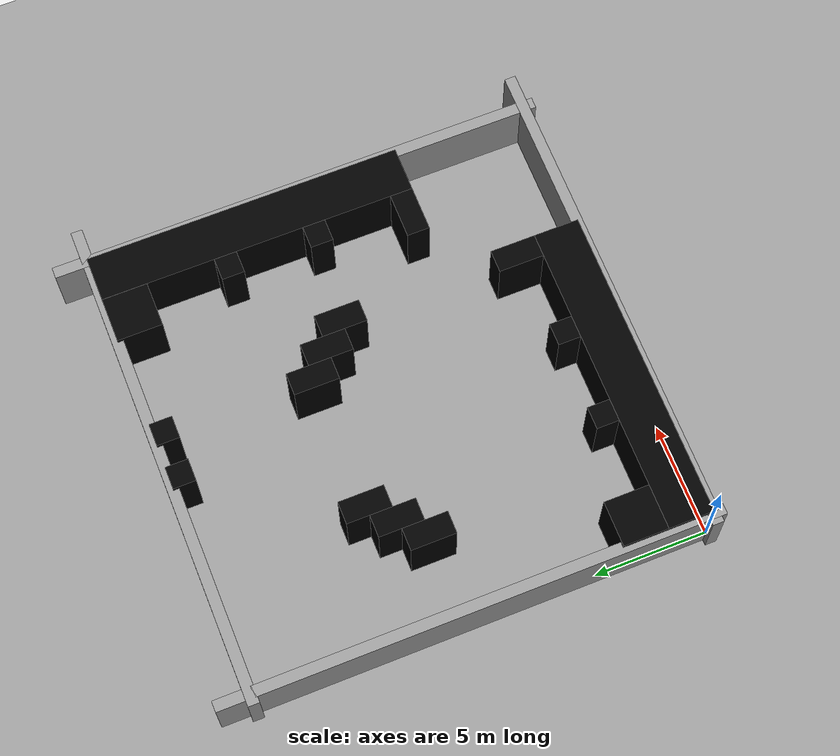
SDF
<sdf version="1.7">
 <world name="default">
  <plugin name="ros_interface_plugin" filename="librotors_gazebo_ros_interface_plugin.so"/>
  <light name="sun" type="directional">
   <pose>0 0 10 0 -0 0</pose>
   <diffuse>0.8 0.8 0.8 1</diffuse>
   <specular>0.2 0.2 0.2 1</specular>
   <attenuation>
    <range>1000</range>
    <constant>0.9</constant>
    <linear>0.01</linear>
    <quadratic>0.001</quadratic>
   </attenuation>
   <direction>-0.5 0.1 -0.9</direction>
   <spot><inner_angle>0</inner_angle><outer_angle>0</outer_angle><falloff>0</falloff></spot>
  </light>
  <model name="ground_plane">
   <static>1</static>
   <link name="link">
    <collision name="collision">
     <geometry><plane><normal>0 0 1</normal><size>100 100</size></plane></geometry>
     <surface><friction><ode><mu>100</mu><mu2>50</mu2></ode></friction></surface>
    </collision>
    <visual name="visual">
     <cast_shadows>0</cast_shadows>
     <geometry><plane><normal>0 0 1</normal><size>100 100</size></plane></geometry>
     <material>
      <script><uri>file://media/materials/scripts/gazebo.material</uri><name>Gazebo/Grey</name></script>
     </material>
    </visual>
   </link>
  </model>
  <gravity>0 0 -9.8</gravity>
  <magnetic_field>6e-06 2.3e-05 -4.2e-05</magnetic_field>
  <atmosphere type="adiabatic"/>
  <physics name="default_physics" default="0" type="ode">
   <max_step_size>0.01</max_step_size>
   <real_time_factor>1</real_time_factor>
   <real_time_update_rate>100</real_time_update_rate>
  </physics>
  <scene><ambient>0.4 0.4 0.4 1</ambient><background>0.7 0.7 0.7 1</background><shadows>1</shadows></scene>
  <audio><device>default</device></audio>
  <spherical_coordinates>
   <surface_model>EARTH_WGS84</surface_model>
   <latitude_deg>0</latitude_deg>
   <longitude_deg>0</longitude_deg>
   <elevation>0</elevation>
   <heading_deg>0</heading_deg>
  </spherical_coordinates>
  <model name="wood_cube_2_5cm">
   <link name="link">
    <pose>0 0 0.0125 0 -0 0</pose>
    <inertial>
     <mass>0.0073</mass>
     <inertia>
      <ixx>7.60417e-07</ixx>
      <ixy>0</ixy>
      <ixz>0</ixz>
      <iyy>7.60417e-07</iyy>
      <iyz>0</iyz>
      <izz>7.60417e-07</izz>
     </inertia>
    </inertial>
    <collision name="collision">
     <geometry><box><size>0.025 0.025 0.025</size></box></geometry>
     <surface>
      <contact>
       <poissons_ratio>0.347</poissons_ratio>
       <elastic_modulus>8.8e+09</elastic_modulus>
       <ode><kp>100000</kp><kd>100</kd><max_vel>100</max_vel><min_depth>0.001</min_depth></ode>
      </contact>
      <friction>
       <torsional>
        <coefficient>1</coefficient>
        <use_patch_radius>0</use_patch_radius>
        <surface_radius>0.01</surface_radius>
       </torsional>
      </friction>
     </surface>
    </collision>
    <visual name="visual">
     <geometry><box><size>0.025 0.025 0.025</size></box></geometry>
     <material>
      <script><uri>file://media/materials/scripts/gazebo.material</uri><name>Gazebo/Wood</name></script>
     </material>
    </visual>
   </link>
   <pose>9.08295 -8.46454 -0.000471 1e-06 0.032616 0</pose>
  </model>
  <model name="ground_plane_0">
   <static>1</static>
   <link name="link">
    <collision name="collision">
     <geometry><plane><normal>0 0 1</normal><size>100 100</size></plane></geometry>
     <surface>
      <contact><collide_bitmask>65535</collide_bitmask></contact>
      <friction><ode><mu>100</mu><mu2>50</mu2></ode></friction>
     </surface>
    </collision>
    <visual name="visual">
     <cast_shadows>0</cast_shadows>
     <geometry><plane><normal>0 0 1</normal><size>100 100</size></plane></geometry>
     <material>
      <script><uri>file://media/materials/scripts/gazebo.material</uri><name>Gazebo/Grey</name></script>
     </material>
    </visual>
   </link>
   <pose>5.30691 -0.598783 0 0 -0 0</pose>
  </model>
  <model name="brick_black_2x2_9">
   <link name="chassis">
    <pose>0 0 1.5 0 -0 0</pose>
    <inertial>
     <mass>1</mass>
     <inertia><ixx>1</ixx><ixy>0</ixy><ixz>0</ixz><iyy>1</iyy><iyz>0</iyz><izz>1</izz></inertia>
    </inertial>
    <visual name="visual">
     <geometry><mesh><uri>model://brick_box_3x1x3/meshes/simple_box.dae</uri><scale>2 2 3</scale></mesh></geometry>
     <material>
      <script>
       <uri>model://brick_box_3x1x3/materials/scripts</uri>
       <uri>model://brick_box_3x1x3/materials/textures</uri>
       <name>BrickBox/Diffuse</name>
      </script>
      <shader type="vertex"><normal_map>__default__</normal_map></shader>
      <ambient>0 0 0 1</ambient>
      <diffuse>0 0 0 1</diffuse>
      <specular>0 0 0 1</specular>
      <emissive>0 0 0 1</emissive>
      <lighting>1</lighting>
     </material>
    </visual>
    <collision name="collision">
     <geometry><box><size>2 2 3</size></box></geometry>
     <surface>
      <friction>
       <ode><mu>1</mu><mu2>1</mu2><fdir1>0 0 0</fdir1><slip1>0</slip1><slip2>0</slip2></ode>
       <torsional>
        <coefficient>1</coefficient>
        <patch_radius>0</patch_radius>
        <surface_radius>0</surface_radius>
        <use_patch_radius>1</use_patch_radius>
        <ode><slip>0</slip></ode>
       </torsional>
      </friction>
      <bounce><restitution_coefficient>0</restitution_coefficient><threshold>1e+06</threshold></bounce>
      <contact>
       <collide_without_contact>0</collide_without_contact>
       <collide_without_contact_bitmask>1</collide_without_contact_bitmask>
       <collide_bitmask>1</collide_bitmask>
       <ode>
        <soft_cfm>0</soft_cfm>
        <soft_erp>0.2</soft_erp>
        <kp>1e+13</kp>
        <kd>1</kd>
        <max_vel>0.01</max_vel>
        <min_depth>0</min_depth>
       </ode>
       <bullet>
        <split_impulse>1</split_impulse>
        <split_impulse_penetration_threshold>-0.01</split_impulse_penetration_threshold>
        <soft_cfm>0</soft_cfm>
        <soft_erp>0.2</soft_erp>
        <kp>1e+13</kp>
        <kd>1</kd>
       </bullet>
      </contact>
     </surface>
    </collision>
   </link>
   <static>1</static>
   <pose>1 3 0 0 -0 0</pose>
  </model>
  <model name="brick_black_2x2_11">
   <link name="chassis">
    <pose>0 0 1.5 0 -0 0</pose>
    <inertial>
     <mass>1</mass>
     <inertia><ixx>1</ixx><ixy>0</ixy><ixz>0</ixz><iyy>1</iyy><iyz>0</iyz><izz>1</izz></inertia>
    </inertial>
    <visual name="visual">
     <geometry><mesh><uri>model://brick_box_3x1x3/meshes/simple_box.dae</uri><scale>2 2 3</scale></mesh></geometry>
     <material>
      <script>
       <uri>model://brick_box_3x1x3/materials/scripts</uri>
       <uri>model://brick_box_3x1x3/materials/textures</uri>
       <name>BrickBox/Diffuse</name>
      </script>
      <shader type="vertex"><normal_map>__default__</normal_map></shader>
      <ambient>0 0 0 1</ambient>
      <diffuse>0 0 0 1</diffuse>
      <specular>0 0 0 1</specular>
      <emissive>0 0 0 1</emissive>
      <lighting>1</lighting>
     </material>
    </visual>
    <collision name="collision">
     <geometry><box><size>2 2 3</size></box></geometry>
     <surface>
      <friction>
       <ode><mu>1</mu><mu2>1</mu2><fdir1>0 0 0</fdir1><slip1>0</slip1><slip2>0</slip2></ode>
       <torsional>
        <coefficient>1</coefficient>
        <patch_radius>0</patch_radius>
        <surface_radius>0</surface_radius>
        <use_patch_radius>1</use_patch_radius>
        <ode><slip>0</slip></ode>
       </torsional>
      </friction>
      <bounce><restitution_coefficient>0</restitution_coefficient><threshold>1e+06</threshold></bounce>
      <contact>
       <collide_without_contact>0</collide_without_contact>
       <collide_without_contact_bitmask>1</collide_without_contact_bitmask>
       <collide_bitmask>1</collide_bitmask>
       <ode>
        <soft_cfm>0</soft_cfm>
        <soft_erp>0.2</soft_erp>
        <kp>1e+13</kp>
        <kd>1</kd>
        <max_vel>0.01</max_vel>
        <min_depth>0</min_depth>
       </ode>
       <bullet>
        <split_impulse>1</split_impulse>
        <split_impulse_penetration_threshold>-0.01</split_impulse_penetration_threshold>
        <soft_cfm>0</soft_cfm>
        <soft_erp>0.2</soft_erp>
        <kp>1e+13</kp>
        <kd>1</kd>
       </bullet>
      </contact>
     </surface>
    </collision>
   </link>
   <static>1</static>
   <pose>17 19 0 0 -0 0</pose>
  </model>
  <model name="brick_black_14x2">
   <link name="chassis">
    <pose>0 0 1.5 0 -0 0</pose>
    <inertial>
     <mass>1</mass>
     <inertia><ixx>1</ixx><ixy>0</ixy><ixz>0</ixz><iyy>1</iyy><iyz>0</iyz><izz>1</izz></inertia>
    </inertial>
    <visual name="visual">
     <geometry>
      <mesh><uri>model://brick_box_3x1x3/meshes/simple_box.dae</uri><scale>14 2 3</scale></mesh>
     </geometry>
     <material>
      <script>
       <uri>model://brick_box_3x1x3/materials/scripts</uri>
       <uri>model://brick_box_3x1x3/materials/textures</uri>
       <name>BrickBox/Diffuse</name>
      </script>
      <shader type="vertex"><normal_map>__default__</normal_map></shader>
      <ambient>0 0 0 1</ambient>
      <diffuse>0 0 0 1</diffuse>
      <specular>0 0 0 1</specular>
      <emissive>0 0 0 1</emissive>
      <lighting>1</lighting>
     </material>
    </visual>
    <collision name="collision">
     <geometry><box><size>28 4 3</size></box></geometry>
     <surface>
      <friction>
       <ode><mu>1</mu><mu2>1</mu2><fdir1>0 0 0</fdir1><slip1>0</slip1><slip2>0</slip2></ode>
       <torsional>
        <coefficient>1</coefficient>
        <patch_radius>0</patch_radius>
        <surface_radius>0</surface_radius>
        <use_patch_radius>1</use_patch_radius>
        <ode><slip>0</slip></ode>
       </torsional>
      </friction>
      <bounce><restitution_coefficient>0</restitution_coefficient><threshold>1e+06</threshold></bounce>
      <contact>
       <collide_without_contact>0</collide_without_contact>
       <collide_without_contact_bitmask>1</collide_without_contact_bitmask>
       <collide_bitmask>1</collide_bitmask>
       <ode>
        <soft_cfm>0</soft_cfm>
        <soft_erp>0.2</soft_erp>
        <kp>1e+13</kp>
        <kd>1</kd>
        <max_vel>0.01</max_vel>
        <min_depth>0</min_depth>
       </ode>
       <bullet>
        <split_impulse>1</split_impulse>
        <split_impulse_penetration_threshold>-0.01</split_impulse_penetration_threshold>
        <soft_cfm>0</soft_cfm>
        <soft_erp>0.2</soft_erp>
        <kp>1e+13</kp>
        <kd>1</kd>
       </bullet>
      </contact>
     </surface>
    </collision>
   </link>
   <static>1</static>
   <pose>7 1 0 0 -0 0</pose>
  </model>
  <model name="brick_black_1x2">
   <link name="chassis">
    <pose>0 0 1.5 0 -0 0</pose>
    <inertial>
     <mass>1</mass>
     <inertia><ixx>1</ixx><ixy>0</ixy><ixz>0</ixz><iyy>1</iyy><iyz>0</iyz><izz>1</izz></inertia>
    </inertial>
    <visual name="visual">
     <geometry><mesh><uri>model://brick_box_3x1x3/meshes/simple_box.dae</uri><scale>1 2 3</scale></mesh></geometry>
     <material>
      <script>
       <uri>model://brick_box_3x1x3/materials/scripts</uri>
       <uri>model://brick_box_3x1x3/materials/textures</uri>
       <name>BrickBox/Diffuse</name>
      </script>
      <shader type="vertex"><normal_map>__default__</normal_map></shader>
      <ambient>0 0 0 1</ambient>
      <diffuse>0 0 0 1</diffuse>
      <specular>0 0 0 1</specular>
      <emissive>0 0 0 1</emissive>
      <lighting>1</lighting>
     </material>
    </visual>
    <collision name="collision">
     <geometry><box><size>1 2 3</size></box></geometry>
     <surface>
      <friction>
       <ode><mu>1</mu><mu2>1</mu2><fdir1>0 0 0</fdir1><slip1>0</slip1><slip2>0</slip2></ode>
       <torsional>
        <coefficient>1</coefficient>
        <patch_radius>0</patch_radius>
        <surface_radius>0</surface_radius>
        <use_patch_radius>1</use_patch_radius>
        <ode><slip>0</slip></ode>
       </torsional>
      </friction>
      <bounce><restitution_coefficient>0</restitution_coefficient><threshold>1e+06</threshold></bounce>
      <contact>
       <collide_without_contact>0</collide_without_contact>
       <collide_without_contact_bitmask>1</collide_without_contact_bitmask>
       <collide_bitmask>1</collide_bitmask>
       <ode>
        <soft_cfm>0</soft_cfm>
        <soft_erp>0.2</soft_erp>
        <kp>1e+13</kp>
        <kd>1</kd>
        <max_vel>0.01</max_vel>
        <min_depth>0</min_depth>
       </ode>
       <bullet>
        <split_impulse>1</split_impulse>
        <split_impulse_penetration_threshold>-0.01</split_impulse_penetration_threshold>
        <soft_cfm>0</soft_cfm>
        <soft_erp>0.2</soft_erp>
        <kp>1e+13</kp>
        <kd>1</kd>
       </bullet>
      </contact>
     </surface>
    </collision>
   </link>
   <static>1</static>
   <pose>13.5 3 3.1e-05 0 -0 0</pose>
  </model>
  <model name="brick_black_1x1">
   <link name="chassis">
    <pose>0 0 1.5 0 -0 0</pose>
    <inertial>
     <mass>1</mass>
     <inertia><ixx>1</ixx><ixy>0</ixy><ixz>0</ixz><iyy>1</iyy><iyz>0</iyz><izz>1</izz></inertia>
    </inertial>
    <visual name="visual">
     <geometry><mesh><uri>model://brick_box_3x1x3/meshes/simple_box.dae</uri><scale>1 1 3</scale></mesh></geometry>
     <material>
      <script>
       <uri>model://brick_box_3x1x3/materials/scripts</uri>
       <uri>model://brick_box_3x1x3/materials/textures</uri>
       <name>BrickBox/Diffuse</name>
      </script>
      <shader type="vertex"><normal_map>__default__</normal_map></shader>
      <ambient>0 0 0 1</ambient>
      <diffuse>0 0 0 1</diffuse>
      <specular>0 0 0 1</specular>
      <emissive>0 0 0 1</emissive>
      <lighting>1</lighting>
     </material>
    </visual>
    <collision name="collision">
     <geometry><box><size>1 1 3</size></box></geometry>
     <surface>
      <friction>
       <ode><mu>1</mu><mu2>1</mu2><fdir1>0 0 0</fdir1><slip1>0</slip1><slip2>0</slip2></ode>
       <torsional>
        <coefficient>1</coefficient>
        <patch_radius>0</patch_radius>
        <surface_radius>0</surface_radius>
        <use_patch_radius>1</use_patch_radius>
        <ode><slip>0</slip></ode>
       </torsional>
      </friction>
      <bounce><restitution_coefficient>0</restitution_coefficient><threshold>1e+06</threshold></bounce>
      <contact>
       <collide_without_contact>0</collide_without_contact>
       <collide_without_contact_bitmask>1</collide_without_contact_bitmask>
       <collide_bitmask>1</collide_bitmask>
       <ode>
        <soft_cfm>0</soft_cfm>
        <soft_erp>0.2</soft_erp>
        <kp>1e+13</kp>
        <kd>1</kd>
        <max_vel>0.01</max_vel>
        <min_depth>0</min_depth>
       </ode>
       <bullet>
        <split_impulse>1</split_impulse>
        <split_impulse_penetration_threshold>-0.01</split_impulse_penetration_threshold>
        <soft_cfm>0</soft_cfm>
        <soft_erp>0.2</soft_erp>
        <kp>1e+13</kp>
        <kd>1</kd>
       </bullet>
      </contact>
     </surface>
    </collision>
   </link>
   <static>1</static>
   <pose>5.5 2.5 0 0 -0 0</pose>
  </model>
  <model name="brick_black_1x1_0">
   <link name="chassis">
    <pose>0 0 1.5 0 -0 0</pose>
    <inertial>
     <mass>1</mass>
     <inertia><ixx>1</ixx><ixy>0</ixy><ixz>0</ixz><iyy>1</iyy><iyz>0</iyz><izz>1</izz></inertia>
    </inertial>
    <visual name="visual">
     <geometry><mesh><uri>model://brick_box_3x1x3/meshes/simple_box.dae</uri><scale>1 1 3</scale></mesh></geometry>
     <material>
      <script>
       <uri>model://brick_box_3x1x3/materials/scripts</uri>
       <uri>model://brick_box_3x1x3/materials/textures</uri>
       <name>BrickBox/Diffuse</name>
      </script>
      <shader type="vertex"><normal_map>__default__</normal_map></shader>
      <ambient>0 0 0 1</ambient>
      <diffuse>0 0 0 1</diffuse>
      <specular>0 0 0 1</specular>
      <emissive>0 0 0 1</emissive>
      <lighting>1</lighting>
     </material>
    </visual>
    <collision name="collision">
     <geometry><box><size>1 1 3</size></box></geometry>
     <surface>
      <friction>
       <ode><mu>1</mu><mu2>1</mu2><fdir1>0 0 0</fdir1><slip1>0</slip1><slip2>0</slip2></ode>
       <torsional>
        <coefficient>1</coefficient>
        <patch_radius>0</patch_radius>
        <surface_radius>0</surface_radius>
        <use_patch_radius>1</use_patch_radius>
        <ode><slip>0</slip></ode>
       </torsional>
      </friction>
      <bounce><restitution_coefficient>0</restitution_coefficient><threshold>1e+06</threshold></bounce>
      <contact>
       <collide_without_contact>0</collide_without_contact>
       <collide_without_contact_bitmask>1</collide_without_contact_bitmask>
       <collide_bitmask>1</collide_bitmask>
       <ode>
        <soft_cfm>0</soft_cfm>
        <soft_erp>0.2</soft_erp>
        <kp>1e+13</kp>
        <kd>1</kd>
        <max_vel>0.01</max_vel>
        <min_depth>0</min_depth>
       </ode>
       <bullet>
        <split_impulse>1</split_impulse>
        <split_impulse_penetration_threshold>-0.01</split_impulse_penetration_threshold>
        <soft_cfm>0</soft_cfm>
        <soft_erp>0.2</soft_erp>
        <kp>1e+13</kp>
        <kd>1</kd>
       </bullet>
      </contact>
     </surface>
    </collision>
   </link>
   <static>1</static>
   <pose>9.5 2.5 0 0 -0 0</pose>
  </model>
  <model name="grey_wall_22">
   <link name="link">
    <pose>0 0 1.4 0 -0 0</pose>
    <inertial>
     <mass>1</mass>
     <inertia><ixx>1</ixx><ixy>0</ixy><ixz>0</ixz><iyy>1</iyy><iyz>0</iyz><izz>1</izz></inertia>
    </inertial>
    <visual name="visual">
     <cast_shadows>0</cast_shadows>
     <geometry><box><size>22 0.5 2.8</size></box></geometry>
     <material>
      <script>
       <uri>model://grey_wall/materials/scripts</uri>
       <uri>model://grey_wall/materials/textures</uri>
       <name>vrc/grey_wall</name>
      </script>
      <shader type="vertex"><normal_map>__default__</normal_map></shader>
      <ambient>1 1 1 1</ambient>
      <diffuse>1 1 1 1</diffuse>
      <specular>0 0 0 1</specular>
      <emissive>0 0 0 1</emissive>
     </material>
    </visual>
    <collision name="collision">
     <geometry><box><size>22 0.5 2.8</size></box></geometry>
     <surface>
      <friction>
       <ode><mu>1</mu><mu2>1</mu2><fdir1>0 0 0</fdir1><slip1>0</slip1><slip2>0</slip2></ode>
       <torsional>
        <coefficient>1</coefficient>
        <patch_radius>0</patch_radius>
        <surface_radius>0</surface_radius>
        <use_patch_radius>1</use_patch_radius>
        <ode><slip>0</slip></ode>
       </torsional>
      </friction>
      <bounce><restitution_coefficient>0</restitution_coefficient><threshold>1e+06</threshold></bounce>
      <contact>
       <collide_without_contact>0</collide_without_contact>
       <collide_without_contact_bitmask>1</collide_without_contact_bitmask>
       <collide_bitmask>1</collide_bitmask>
       <ode>
        <soft_cfm>0</soft_cfm>
        <soft_erp>0.2</soft_erp>
        <kp>1e+13</kp>
        <kd>1</kd>
        <max_vel>0.01</max_vel>
        <min_depth>0</min_depth>
       </ode>
       <bullet>
        <split_impulse>1</split_impulse>
        <split_impulse_penetration_threshold>-0.01</split_impulse_penetration_threshold>
        <soft_cfm>0</soft_cfm>
        <soft_erp>0.2</soft_erp>
        <kp>1e+13</kp>
        <kd>1</kd>
       </bullet>
      </contact>
     </surface>
    </collision>
   </link>
   <static>1</static>
   <pose>10.5 0 0 0 -0 0</pose>
  </model>
  <model name="grey_wall_22_0">
   <link name="link">
    <pose>0 0 1.4 0 -0 0</pose>
    <inertial>
     <mass>1</mass>
     <inertia><ixx>1</ixx><ixy>0</ixy><ixz>0</ixz><iyy>1</iyy><iyz>0</iyz><izz>1</izz></inertia>
    </inertial>
    <visual name="visual">
     <cast_shadows>0</cast_shadows>
     <geometry><box><size>22 0.5 2.8</size></box></geometry>
     <material>
      <script>
       <uri>model://grey_wall/materials/scripts</uri>
       <uri>model://grey_wall/materials/textures</uri>
       <name>vrc/grey_wall</name>
      </script>
      <shader type="vertex"><normal_map>__default__</normal_map></shader>
      <ambient>1 1 1 1</ambient>
      <diffuse>1 1 1 1</diffuse>
      <specular>0 0 0 1</specular>
      <emissive>0 0 0 1</emissive>
     </material>
    </visual>
    <collision name="collision">
     <geometry><box><size>22 0.5 2.8</size></box></geometry>
     <surface>
      <friction>
       <ode><mu>1</mu><mu2>1</mu2><fdir1>0 0 0</fdir1><slip1>0</slip1><slip2>0</slip2></ode>
       <torsional>
        <coefficient>1</coefficient>
        <patch_radius>0</patch_radius>
        <surface_radius>0</surface_radius>
        <use_patch_radius>1</use_patch_radius>
        <ode><slip>0</slip></ode>
       </torsional>
      </friction>
      <bounce><restitution_coefficient>0</restitution_coefficient><threshold>1e+06</threshold></bounce>
      <contact>
       <collide_without_contact>0</collide_without_contact>
       <collide_without_contact_bitmask>1</collide_without_contact_bitmask>
       <collide_bitmask>1</collide_bitmask>
       <ode>
        <soft_cfm>0</soft_cfm>
        <soft_erp>0.2</soft_erp>
        <kp>1e+13</kp>
        <kd>1</kd>
        <max_vel>0.01</max_vel>
        <min_depth>0</min_depth>
       </ode>
       <bullet>
        <split_impulse>1</split_impulse>
        <split_impulse_penetration_threshold>-0.01</split_impulse_penetration_threshold>
        <soft_cfm>0</soft_cfm>
        <soft_erp>0.2</soft_erp>
        <kp>1e+13</kp>
        <kd>1</kd>
       </bullet>
      </contact>
     </surface>
    </collision>
   </link>
   <static>1</static>
   <pose>10.5 20 0 0 -0 0</pose>
  </model>
  <model name="grey_wall_22_1">
   <link name="link">
    <pose>0 0 1.4 0 -0 0</pose>
    <inertial>
     <mass>1</mass>
     <inertia><ixx>1</ixx><ixy>0</ixy><ixz>0</ixz><iyy>1</iyy><iyz>0</iyz><izz>1</izz></inertia>
    </inertial>
    <visual name="visual">
     <cast_shadows>0</cast_shadows>
     <geometry><box><size>22 0.5 2.8</size></box></geometry>
     <material>
      <script>
       <uri>model://grey_wall/materials/scripts</uri>
       <uri>model://grey_wall/materials/textures</uri>
       <name>vrc/grey_wall</name>
      </script>
      <shader type="vertex"><normal_map>__default__</normal_map></shader>
      <ambient>1 1 1 1</ambient>
      <diffuse>1 1 1 1</diffuse>
      <specular>0 0 0 1</specular>
      <emissive>0 0 0 1</emissive>
     </material>
    </visual>
    <collision name="collision">
     <geometry><box><size>22 0.5 2.8</size></box></geometry>
     <surface>
      <friction>
       <ode><mu>1</mu><mu2>1</mu2><fdir1>0 0 0</fdir1><slip1>0</slip1><slip2>0</slip2></ode>
       <torsional>
        <coefficient>1</coefficient>
        <patch_radius>0</patch_radius>
        <surface_radius>0</surface_radius>
        <use_patch_radius>1</use_patch_radius>
        <ode><slip>0</slip></ode>
       </torsional>
      </friction>
      <bounce><restitution_coefficient>0</restitution_coefficient><threshold>1e+06</threshold></bounce>
      <contact>
       <collide_without_contact>0</collide_without_contact>
       <collide_without_contact_bitmask>1</collide_without_contact_bitmask>
       <collide_bitmask>1</collide_bitmask>
       <ode>
        <soft_cfm>0</soft_cfm>
        <soft_erp>0.2</soft_erp>
        <kp>1e+13</kp>
        <kd>1</kd>
        <max_vel>0.01</max_vel>
        <min_depth>0</min_depth>
       </ode>
       <bullet>
        <split_impulse>1</split_impulse>
        <split_impulse_penetration_threshold>-0.01</split_impulse_penetration_threshold>
        <soft_cfm>0</soft_cfm>
        <soft_erp>0.2</soft_erp>
        <kp>1e+13</kp>
        <kd>1</kd>
       </bullet>
      </contact>
     </surface>
    </collision>
   </link>
   <static>1</static>
   <pose>0 10.5 0 0 -0 1.57</pose>
  </model>
  <model name="grey_wall_22_2">
   <link name="link">
    <pose>0 0 1.4 0 -0 0</pose>
    <inertial>
     <mass>1</mass>
     <inertia><ixx>1</ixx><ixy>0</ixy><ixz>0</ixz><iyy>1</iyy><iyz>0</iyz><izz>1</izz></inertia>
    </inertial>
    <visual name="visual">
     <cast_shadows>0</cast_shadows>
     <geometry><box><size>22 0.5 2.8</size></box></geometry>
     <material>
      <script>
       <uri>model://grey_wall/materials/scripts</uri>
       <uri>model://grey_wall/materials/textures</uri>
       <name>vrc/grey_wall</name>
      </script>
      <shader type="vertex"><normal_map>__default__</normal_map></shader>
      <ambient>1 1 1 1</ambient>
      <diffuse>1 1 1 1</diffuse>
      <specular>0 0 0 1</specular>
      <emissive>0 0 0 1</emissive>
     </material>
    </visual>
    <collision name="collision">
     <geometry><box><size>22 0.5 2.8</size></box></geometry>
     <surface>
      <friction>
       <ode><mu>1</mu><mu2>1</mu2><fdir1>0 0 0</fdir1><slip1>0</slip1><slip2>0</slip2></ode>
       <torsional>
        <coefficient>1</coefficient>
        <patch_radius>0</patch_radius>
        <surface_radius>0</surface_radius>
        <use_patch_radius>1</use_patch_radius>
        <ode><slip>0</slip></ode>
       </torsional>
      </friction>
      <bounce><restitution_coefficient>0</restitution_coefficient><threshold>1e+06</threshold></bounce>
      <contact>
       <collide_without_contact>0</collide_without_contact>
       <collide_without_contact_bitmask>1</collide_without_contact_bitmask>
       <collide_bitmask>1</collide_bitmask>
       <ode>
        <soft_cfm>0</soft_cfm>
        <soft_erp>0.2</soft_erp>
        <kp>1e+13</kp>
        <kd>1</kd>
        <max_vel>0.01</max_vel>
        <min_depth>0</min_depth>
       </ode>
       <bullet>
        <split_impulse>1</split_impulse>
        <split_impulse_penetration_threshold>-0.01</split_impulse_penetration_threshold>
        <soft_cfm>0</soft_cfm>
        <soft_erp>0.2</soft_erp>
        <kp>1e+13</kp>
        <kd>1</kd>
       </bullet>
      </contact>
     </surface>
    </collision>
   </link>
   <static>1</static>
   <pose>20 10.5 0 0 -0 1.57</pose>
  </model>
  <model name="brick_black_14x2_0">
   <link name="chassis">
    <pose>0 0 1.5 0 -0 0</pose>
    <inertial>
     <mass>1</mass>
     <inertia><ixx>1</ixx><ixy>0</ixy><ixz>0</ixz><iyy>1</iyy><iyz>0</iyz><izz>1</izz></inertia>
    </inertial>
    <visual name="visual">
     <geometry>
      <mesh><uri>model://brick_box_3x1x3/meshes/simple_box.dae</uri><scale>14 2 3</scale></mesh>
     </geometry>
     <material>
      <script>
       <uri>model://brick_box_3x1x3/materials/scripts</uri>
       <uri>model://brick_box_3x1x3/materials/textures</uri>
       <name>BrickBox/Diffuse</name>
      </script>
      <shader type="vertex"><normal_map>__default__</normal_map></shader>
      <ambient>0 0 0 1</ambient>
      <diffuse>0 0 0 1</diffuse>
      <specular>0 0 0 1</specular>
      <emissive>0 0 0 1</emissive>
      <lighting>1</lighting>
     </material>
    </visual>
    <collision name="collision">
     <geometry><box><size>28 4 3</size></box></geometry>
     <surface>
      <friction>
       <ode><mu>1</mu><mu2>1</mu2><fdir1>0 0 0</fdir1><slip1>0</slip1><slip2>0</slip2></ode>
       <torsional>
        <coefficient>1</coefficient>
        <patch_radius>0</patch_radius>
        <surface_radius>0</surface_radius>
        <use_patch_radius>1</use_patch_radius>
        <ode><slip>0</slip></ode>
       </torsional>
      </friction>
      <bounce><restitution_coefficient>0</restitution_coefficient><threshold>1e+06</threshold></bounce>
      <contact>
       <collide_without_contact>0</collide_without_contact>
       <collide_without_contact_bitmask>1</collide_without_contact_bitmask>
       <collide_bitmask>1</collide_bitmask>
       <ode>
        <soft_cfm>0</soft_cfm>
        <soft_erp>0.2</soft_erp>
        <kp>1e+13</kp>
        <kd>1</kd>
        <max_vel>0.01</max_vel>
        <min_depth>0</min_depth>
       </ode>
       <bullet>
        <split_impulse>1</split_impulse>
        <split_impulse_penetration_threshold>-0.01</split_impulse_penetration_threshold>
        <soft_cfm>0</soft_cfm>
        <soft_erp>0.2</soft_erp>
        <kp>1e+13</kp>
        <kd>1</kd>
       </bullet>
      </contact>
     </surface>
    </collision>
   </link>
   <static>1</static>
   <pose>19 13 0 0 -0 1.57</pose>
  </model>
  <model name="brick_black_1x2_0">
   <link name="chassis">
    <pose>0 0 1.5 0 -0 0</pose>
    <inertial>
     <mass>1</mass>
     <inertia><ixx>1</ixx><ixy>0</ixy><ixz>0</ixz><iyy>1</iyy><iyz>0</iyz><izz>1</izz></inertia>
    </inertial>
    <visual name="visual">
     <geometry><mesh><uri>model://brick_box_3x1x3/meshes/simple_box.dae</uri><scale>1 2 3</scale></mesh></geometry>
     <material>
      <script>
       <uri>model://brick_box_3x1x3/materials/scripts</uri>
       <uri>model://brick_box_3x1x3/materials/textures</uri>
       <name>BrickBox/Diffuse</name>
      </script>
      <shader type="vertex"><normal_map>__default__</normal_map></shader>
      <ambient>0 0 0 1</ambient>
      <diffuse>0 0 0 1</diffuse>
      <specular>0 0 0 1</specular>
      <emissive>0 0 0 1</emissive>
      <lighting>1</lighting>
     </material>
    </visual>
    <collision name="collision">
     <geometry><box><size>1 2 3</size></box></geometry>
     <surface>
      <friction>
       <ode><mu>1</mu><mu2>1</mu2><fdir1>0 0 0</fdir1><slip1>0</slip1><slip2>0</slip2></ode>
       <torsional>
        <coefficient>1</coefficient>
        <patch_radius>0</patch_radius>
        <surface_radius>0</surface_radius>
        <use_patch_radius>1</use_patch_radius>
        <ode><slip>0</slip></ode>
       </torsional>
      </friction>
      <bounce><restitution_coefficient>0</restitution_coefficient><threshold>1e+06</threshold></bounce>
      <contact>
       <collide_without_contact>0</collide_without_contact>
       <collide_without_contact_bitmask>1</collide_without_contact_bitmask>
       <collide_bitmask>1</collide_bitmask>
       <ode>
        <soft_cfm>0</soft_cfm>
        <soft_erp>0.2</soft_erp>
        <kp>1e+13</kp>
        <kd>1</kd>
        <max_vel>0.01</max_vel>
        <min_depth>0</min_depth>
       </ode>
       <bullet>
        <split_impulse>1</split_impulse>
        <split_impulse_penetration_threshold>-0.01</split_impulse_penetration_threshold>
        <soft_cfm>0</soft_cfm>
        <soft_erp>0.2</soft_erp>
        <kp>1e+13</kp>
        <kd>1</kd>
       </bullet>
      </contact>
     </surface>
    </collision>
   </link>
   <static>1</static>
   <pose>17 6.5 0 0 -0 1.57</pose>
  </model>
  <model name="brick_black_1x1_1">
   <link name="chassis">
    <pose>0 0 1.5 0 -0 0</pose>
    <inertial>
     <mass>1</mass>
     <inertia><ixx>1</ixx><ixy>0</ixy><ixz>0</ixz><iyy>1</iyy><iyz>0</iyz><izz>1</izz></inertia>
    </inertial>
    <visual name="visual">
     <geometry><mesh><uri>model://brick_box_3x1x3/meshes/simple_box.dae</uri><scale>1 1 3</scale></mesh></geometry>
     <material>
      <script>
       <uri>model://brick_box_3x1x3/materials/scripts</uri>
       <uri>model://brick_box_3x1x3/materials/textures</uri>
       <name>BrickBox/Diffuse</name>
      </script>
      <shader type="vertex"><normal_map>__default__</normal_map></shader>
      <ambient>0 0 0 1</ambient>
      <diffuse>0 0 0 1</diffuse>
      <specular>0 0 0 1</specular>
      <emissive>0 0 0 1</emissive>
      <lighting>1</lighting>
     </material>
    </visual>
    <collision name="collision">
     <geometry><box><size>1 1 3</size></box></geometry>
     <surface>
      <friction>
       <ode><mu>1</mu><mu2>1</mu2><fdir1>0 0 0</fdir1><slip1>0</slip1><slip2>0</slip2></ode>
       <torsional>
        <coefficient>1</coefficient>
        <patch_radius>0</patch_radius>
        <surface_radius>0</surface_radius>
        <use_patch_radius>1</use_patch_radius>
        <ode><slip>0</slip></ode>
       </torsional>
      </friction>
      <bounce><restitution_coefficient>0</restitution_coefficient><threshold>1e+06</threshold></bounce>
      <contact>
       <collide_without_contact>0</collide_without_contact>
       <collide_without_contact_bitmask>1</collide_without_contact_bitmask>
       <collide_bitmask>1</collide_bitmask>
       <ode>
        <soft_cfm>0</soft_cfm>
        <soft_erp>0.2</soft_erp>
        <kp>1e+13</kp>
        <kd>1</kd>
        <max_vel>0.01</max_vel>
        <min_depth>0</min_depth>
       </ode>
       <bullet>
        <split_impulse>1</split_impulse>
        <split_impulse_penetration_threshold>-0.01</split_impulse_penetration_threshold>
        <soft_cfm>0</soft_cfm>
        <soft_erp>0.2</soft_erp>
        <kp>1e+13</kp>
        <kd>1</kd>
       </bullet>
      </contact>
     </surface>
    </collision>
   </link>
   <static>1</static>
   <pose>17.5 14.5 0 0 -0 0</pose>
  </model>
  <model name="brick_black_1x1_2">
   <link name="chassis">
    <pose>0 0 1.5 0 -0 0</pose>
    <inertial>
     <mass>1</mass>
     <inertia><ixx>1</ixx><ixy>0</ixy><ixz>0</ixz><iyy>1</iyy><iyz>0</iyz><izz>1</izz></inertia>
    </inertial>
    <visual name="visual">
     <geometry><mesh><uri>model://brick_box_3x1x3/meshes/simple_box.dae</uri><scale>1 1 3</scale></mesh></geometry>
     <material>
      <script>
       <uri>model://brick_box_3x1x3/materials/scripts</uri>
       <uri>model://brick_box_3x1x3/materials/textures</uri>
       <name>BrickBox/Diffuse</name>
      </script>
      <shader type="vertex"><normal_map>__default__</normal_map></shader>
      <ambient>0 0 0 1</ambient>
      <diffuse>0 0 0 1</diffuse>
      <specular>0 0 0 1</specular>
      <emissive>0 0 0 1</emissive>
      <lighting>1</lighting>
     </material>
    </visual>
    <collision name="collision">
     <geometry><box><size>1 1 3</size></box></geometry>
     <surface>
      <friction>
       <ode><mu>1</mu><mu2>1</mu2><fdir1>0 0 0</fdir1><slip1>0</slip1><slip2>0</slip2></ode>
       <torsional>
        <coefficient>1</coefficient>
        <patch_radius>0</patch_radius>
        <surface_radius>0</surface_radius>
        <use_patch_radius>1</use_patch_radius>
        <ode><slip>0</slip></ode>
       </torsional>
      </friction>
      <bounce><restitution_coefficient>0</restitution_coefficient><threshold>1e+06</threshold></bounce>
      <contact>
       <collide_without_contact>0</collide_without_contact>
       <collide_without_contact_bitmask>1</collide_without_contact_bitmask>
       <collide_bitmask>1</collide_bitmask>
       <ode>
        <soft_cfm>0</soft_cfm>
        <soft_erp>0.2</soft_erp>
        <kp>1e+13</kp>
        <kd>1</kd>
        <max_vel>0.01</max_vel>
        <min_depth>0</min_depth>
       </ode>
       <bullet>
        <split_impulse>1</split_impulse>
        <split_impulse_penetration_threshold>-0.01</split_impulse_penetration_threshold>
        <soft_cfm>0</soft_cfm>
        <soft_erp>0.2</soft_erp>
        <kp>1e+13</kp>
        <kd>1</kd>
       </bullet>
      </contact>
     </surface>
    </collision>
   </link>
   <static>1</static>
   <pose>17.5 10.5 0 0 -0 0</pose>
  </model>
  <model name="brick_black_1x2_1">
   <link name="chassis">
    <pose>0 0 1.5 0 -0 0</pose>
    <inertial>
     <mass>1</mass>
     <inertia><ixx>1</ixx><ixy>0</ixy><ixz>0</ixz><iyy>1</iyy><iyz>0</iyz><izz>1</izz></inertia>
    </inertial>
    <visual name="visual">
     <geometry><mesh><uri>model://brick_box_3x1x3/meshes/simple_box.dae</uri><scale>1 2 3</scale></mesh></geometry>
     <material>
      <script>
       <uri>model://brick_box_3x1x3/materials/scripts</uri>
       <uri>model://brick_box_3x1x3/materials/textures</uri>
       <name>BrickBox/Diffuse</name>
      </script>
      <shader type="vertex"><normal_map>__default__</normal_map></shader>
      <ambient>0 0 0 1</ambient>
      <diffuse>0 0 0 1</diffuse>
      <specular>0 0 0 1</specular>
      <emissive>0 0 0 1</emissive>
      <lighting>1</lighting>
     </material>
    </visual>
    <collision name="collision">
     <geometry><box><size>1 2 3</size></box></geometry>
     <surface>
      <friction>
       <ode><mu>1</mu><mu2>1</mu2><fdir1>0 0 0</fdir1><slip1>0</slip1><slip2>0</slip2></ode>
       <torsional>
        <coefficient>1</coefficient>
        <patch_radius>0</patch_radius>
        <surface_radius>0</surface_radius>
        <use_patch_radius>1</use_patch_radius>
        <ode><slip>0</slip></ode>
       </torsional>
      </friction>
      <bounce><restitution_coefficient>0</restitution_coefficient><threshold>1e+06</threshold></bounce>
      <contact>
       <collide_without_contact>0</collide_without_contact>
       <collide_without_contact_bitmask>1</collide_without_contact_bitmask>
       <collide_bitmask>1</collide_bitmask>
       <ode>
        <soft_cfm>0</soft_cfm>
        <soft_erp>0.2</soft_erp>
        <kp>1e+13</kp>
        <kd>1</kd>
        <max_vel>0.01</max_vel>
        <min_depth>0</min_depth>
       </ode>
       <bullet>
        <split_impulse>1</split_impulse>
        <split_impulse_penetration_threshold>-0.01</split_impulse_penetration_threshold>
        <soft_cfm>0</soft_cfm>
        <soft_erp>0.2</soft_erp>
        <kp>1e+13</kp>
        <kd>1</kd>
       </bullet>
      </contact>
     </surface>
    </collision>
   </link>
   <static>1</static>
   <pose>13.5 11 0 0 -0 0</pose>
  </model>
  <model name="brick_black_1x2_2">
   <link name="chassis">
    <pose>0 0 1.5 0 -0 0</pose>
    <inertial>
     <mass>1</mass>
     <inertia><ixx>1</ixx><ixy>0</ixy><ixz>0</ixz><iyy>1</iyy><iyz>0</iyz><izz>1</izz></inertia>
    </inertial>
    <visual name="visual">
     <geometry><mesh><uri>model://brick_box_3x1x3/meshes/simple_box.dae</uri><scale>1 2 3</scale></mesh></geometry>
     <material>
      <script>
       <uri>model://brick_box_3x1x3/materials/scripts</uri>
       <uri>model://brick_box_3x1x3/materials/textures</uri>
       <name>BrickBox/Diffuse</name>
      </script>
      <shader type="vertex"><normal_map>__default__</normal_map></shader>
      <ambient>0 0 0 1</ambient>
      <diffuse>0 0 0 1</diffuse>
      <specular>0 0 0 1</specular>
      <emissive>0 0 0 1</emissive>
      <lighting>1</lighting>
     </material>
    </visual>
    <collision name="collision">
     <geometry><box><size>1 2 3</size></box></geometry>
     <surface>
      <friction>
       <ode><mu>1</mu><mu2>1</mu2><fdir1>0 0 0</fdir1><slip1>0</slip1><slip2>0</slip2></ode>
       <torsional>
        <coefficient>1</coefficient>
        <patch_radius>0</patch_radius>
        <surface_radius>0</surface_radius>
        <use_patch_radius>1</use_patch_radius>
        <ode><slip>0</slip></ode>
       </torsional>
      </friction>
      <bounce><restitution_coefficient>0</restitution_coefficient><threshold>1e+06</threshold></bounce>
      <contact>
       <collide_without_contact>0</collide_without_contact>
       <collide_without_contact_bitmask>1</collide_without_contact_bitmask>
       <collide_bitmask>1</collide_bitmask>
       <ode>
        <soft_cfm>0</soft_cfm>
        <soft_erp>0.2</soft_erp>
        <kp>1e+13</kp>
        <kd>1</kd>
        <max_vel>0.01</max_vel>
        <min_depth>0</min_depth>
       </ode>
       <bullet>
        <split_impulse>1</split_impulse>
        <split_impulse_penetration_threshold>-0.01</split_impulse_penetration_threshold>
        <soft_cfm>0</soft_cfm>
        <soft_erp>0.2</soft_erp>
        <kp>1e+13</kp>
        <kd>1</kd>
       </bullet>
      </contact>
     </surface>
    </collision>
   </link>
   <static>1</static>
   <pose>12.5 12 0 0 -0 0</pose>
  </model>
  <model name="brick_black_1x2_3">
   <link name="chassis">
    <pose>0 0 1.5 0 -0 0</pose>
    <inertial>
     <mass>1</mass>
     <inertia><ixx>1</ixx><ixy>0</ixy><ixz>0</ixz><iyy>1</iyy><iyz>0</iyz><izz>1</izz></inertia>
    </inertial>
    <visual name="visual">
     <geometry><mesh><uri>model://brick_box_3x1x3/meshes/simple_box.dae</uri><scale>1 2 3</scale></mesh></geometry>
     <material>
      <script>
       <uri>model://brick_box_3x1x3/materials/scripts</uri>
       <uri>model://brick_box_3x1x3/materials/textures</uri>
       <name>BrickBox/Diffuse</name>
      </script>
      <shader type="vertex"><normal_map>__default__</normal_map></shader>
      <ambient>0 0 0 1</ambient>
      <diffuse>0 0 0 1</diffuse>
      <specular>0 0 0 1</specular>
      <emissive>0 0 0 1</emissive>
      <lighting>1</lighting>
     </material>
    </visual>
    <collision name="collision">
     <geometry><box><size>1 2 3</size></box></geometry>
     <surface>
      <friction>
       <ode><mu>1</mu><mu2>1</mu2><fdir1>0 0 0</fdir1><slip1>0</slip1><slip2>0</slip2></ode>
       <torsional>
        <coefficient>1</coefficient>
        <patch_radius>0</patch_radius>
        <surface_radius>0</surface_radius>
        <use_patch_radius>1</use_patch_radius>
        <ode><slip>0</slip></ode>
       </torsional>
      </friction>
      <bounce><restitution_coefficient>0</restitution_coefficient><threshold>1e+06</threshold></bounce>
      <contact>
       <collide_without_contact>0</collide_without_contact>
       <collide_without_contact_bitmask>1</collide_without_contact_bitmask>
       <collide_bitmask>1</collide_bitmask>
       <ode>
        <soft_cfm>0</soft_cfm>
        <soft_erp>0.2</soft_erp>
        <kp>1e+13</kp>
        <kd>1</kd>
        <max_vel>0.01</max_vel>
        <min_depth>0</min_depth>
       </ode>
       <bullet>
        <split_impulse>1</split_impulse>
        <split_impulse_penetration_threshold>-0.01</split_impulse_penetration_threshold>
        <soft_cfm>0</soft_cfm>
        <soft_erp>0.2</soft_erp>
        <kp>1e+13</kp>
        <kd>1</kd>
       </bullet>
      </contact>
     </surface>
    </collision>
   </link>
   <static>1</static>
   <pose>11.5 13 0 0 -0 0</pose>
  </model>
  <model name="brick_black_1x2_4">
   <link name="chassis">
    <pose>0 0 1.5 0 -0 0</pose>
    <inertial>
     <mass>1</mass>
     <inertia><ixx>1</ixx><ixy>0</ixy><ixz>0</ixz><iyy>1</iyy><iyz>0</iyz><izz>1</izz></inertia>
    </inertial>
    <visual name="visual">
     <geometry><mesh><uri>model://brick_box_3x1x3/meshes/simple_box.dae</uri><scale>1 2 3</scale></mesh></geometry>
     <material>
      <script>
       <uri>model://brick_box_3x1x3/materials/scripts</uri>
       <uri>model://brick_box_3x1x3/materials/textures</uri>
       <name>BrickBox/Diffuse</name>
      </script>
      <shader type="vertex"><normal_map>__default__</normal_map></shader>
      <ambient>0 0 0 1</ambient>
      <diffuse>0 0 0 1</diffuse>
      <specular>0 0 0 1</specular>
      <emissive>0 0 0 1</emissive>
      <lighting>1</lighting>
     </material>
    </visual>
    <collision name="collision">
     <geometry><box><size>1 2 3</size></box></geometry>
     <surface>
      <friction>
       <ode><mu>1</mu><mu2>1</mu2><fdir1>0 0 0</fdir1><slip1>0</slip1><slip2>0</slip2></ode>
       <torsional>
        <coefficient>1</coefficient>
        <patch_radius>0</patch_radius>
        <surface_radius>0</surface_radius>
        <use_patch_radius>1</use_patch_radius>
        <ode><slip>0</slip></ode>
       </torsional>
      </friction>
      <bounce><restitution_coefficient>0</restitution_coefficient><threshold>1e+06</threshold></bounce>
      <contact>
       <collide_without_contact>0</collide_without_contact>
       <collide_without_contact_bitmask>1</collide_without_contact_bitmask>
       <collide_bitmask>1</collide_bitmask>
       <ode>
        <soft_cfm>0</soft_cfm>
        <soft_erp>0.2</soft_erp>
        <kp>1e+13</kp>
        <kd>1</kd>
        <max_vel>0.01</max_vel>
        <min_depth>0</min_depth>
       </ode>
       <bullet>
        <split_impulse>1</split_impulse>
        <split_impulse_penetration_threshold>-0.01</split_impulse_penetration_threshold>
        <soft_cfm>0</soft_cfm>
        <soft_erp>0.2</soft_erp>
        <kp>1e+13</kp>
        <kd>1</kd>
       </bullet>
      </contact>
     </surface>
    </collision>
   </link>
   <static>1</static>
   <pose>5.5 13 0 0 -0 0</pose>
  </model>
  <model name="brick_black_1x2_5">
   <link name="chassis">
    <pose>0 0 1.5 0 -0 0</pose>
    <inertial>
     <mass>1</mass>
     <inertia><ixx>1</ixx><ixy>0</ixy><ixz>0</ixz><iyy>1</iyy><iyz>0</iyz><izz>1</izz></inertia>
    </inertial>
    <visual name="visual">
     <geometry><mesh><uri>model://brick_box_3x1x3/meshes/simple_box.dae</uri><scale>1 2 3</scale></mesh></geometry>
     <material>
      <script>
       <uri>model://brick_box_3x1x3/materials/scripts</uri>
       <uri>model://brick_box_3x1x3/materials/textures</uri>
       <name>BrickBox/Diffuse</name>
      </script>
      <shader type="vertex"><normal_map>__default__</normal_map></shader>
      <ambient>0 0 0 1</ambient>
      <diffuse>0 0 0 1</diffuse>
      <specular>0 0 0 1</specular>
      <emissive>0 0 0 1</emissive>
      <lighting>1</lighting>
     </material>
    </visual>
    <collision name="collision">
     <geometry><box><size>1 2 3</size></box></geometry>
     <surface>
      <friction>
       <ode><mu>1</mu><mu2>1</mu2><fdir1>0 0 0</fdir1><slip1>0</slip1><slip2>0</slip2></ode>
       <torsional>
        <coefficient>1</coefficient>
        <patch_radius>0</patch_radius>
        <surface_radius>0</surface_radius>
        <use_patch_radius>1</use_patch_radius>
        <ode><slip>0</slip></ode>
       </torsional>
      </friction>
      <bounce><restitution_coefficient>0</restitution_coefficient><threshold>1e+06</threshold></bounce>
      <contact>
       <collide_without_contact>0</collide_without_contact>
       <collide_without_contact_bitmask>1</collide_without_contact_bitmask>
       <collide_bitmask>1</collide_bitmask>
       <ode>
        <soft_cfm>0</soft_cfm>
        <soft_erp>0.2</soft_erp>
        <kp>1e+13</kp>
        <kd>1</kd>
        <max_vel>0.01</max_vel>
        <min_depth>0</min_depth>
       </ode>
       <bullet>
        <split_impulse>1</split_impulse>
        <split_impulse_penetration_threshold>-0.01</split_impulse_penetration_threshold>
        <soft_cfm>0</soft_cfm>
        <soft_erp>0.2</soft_erp>
        <kp>1e+13</kp>
        <kd>1</kd>
       </bullet>
      </contact>
     </surface>
    </collision>
   </link>
   <static>1</static>
   <pose>4.5 12 0 0 -0 0</pose>
  </model>
  <model name="brick_black_1x2_6">
   <link name="chassis">
    <pose>0 0 1.5 0 -0 0</pose>
    <inertial>
     <mass>1</mass>
     <inertia><ixx>1</ixx><ixy>0</ixy><ixz>0</ixz><iyy>1</iyy><iyz>0</iyz><izz>1</izz></inertia>
    </inertial>
    <visual name="visual">
     <geometry><mesh><uri>model://brick_box_3x1x3/meshes/simple_box.dae</uri><scale>1 2 3</scale></mesh></geometry>
     <material>
      <script>
       <uri>model://brick_box_3x1x3/materials/scripts</uri>
       <uri>model://brick_box_3x1x3/materials/textures</uri>
       <name>BrickBox/Diffuse</name>
      </script>
      <shader type="vertex"><normal_map>__default__</normal_map></shader>
      <ambient>0 0 0 1</ambient>
      <diffuse>0 0 0 1</diffuse>
      <specular>0 0 0 1</specular>
      <emissive>0 0 0 1</emissive>
      <lighting>1</lighting>
     </material>
    </visual>
    <collision name="collision">
     <geometry><box><size>1 2 3</size></box></geometry>
     <surface>
      <friction>
       <ode><mu>1</mu><mu2>1</mu2><fdir1>0 0 0</fdir1><slip1>0</slip1><slip2>0</slip2></ode>
       <torsional>
        <coefficient>1</coefficient>
        <patch_radius>0</patch_radius>
        <surface_radius>0</surface_radius>
        <use_patch_radius>1</use_patch_radius>
        <ode><slip>0</slip></ode>
       </torsional>
      </friction>
      <bounce><restitution_coefficient>0</restitution_coefficient><threshold>1e+06</threshold></bounce>
      <contact>
       <collide_without_contact>0</collide_without_contact>
       <collide_without_contact_bitmask>1</collide_without_contact_bitmask>
       <collide_bitmask>1</collide_bitmask>
       <ode>
        <soft_cfm>0</soft_cfm>
        <soft_erp>0.2</soft_erp>
        <kp>1e+13</kp>
        <kd>1</kd>
        <max_vel>0.01</max_vel>
        <min_depth>0</min_depth>
       </ode>
       <bullet>
        <split_impulse>1</split_impulse>
        <split_impulse_penetration_threshold>-0.01</split_impulse_penetration_threshold>
        <soft_cfm>0</soft_cfm>
        <soft_erp>0.2</soft_erp>
        <kp>1e+13</kp>
        <kd>1</kd>
       </bullet>
      </contact>
     </surface>
    </collision>
   </link>
   <static>1</static>
   <pose>3.5 11 0 0 -0 0</pose>
  </model>
  <model name="brick_black_1x1_3">
   <link name="chassis">
    <pose>0 0 1.5 0 -0 0</pose>
    <inertial>
     <mass>1</mass>
     <inertia><ixx>1</ixx><ixy>0</ixy><ixz>0</ixz><iyy>1</iyy><iyz>0</iyz><izz>1</izz></inertia>
    </inertial>
    <visual name="visual">
     <geometry><mesh><uri>model://brick_box_3x1x3/meshes/simple_box.dae</uri><scale>1 1 3</scale></mesh></geometry>
     <material>
      <script>
       <uri>model://brick_box_3x1x3/materials/scripts</uri>
       <uri>model://brick_box_3x1x3/materials/textures</uri>
       <name>BrickBox/Diffuse</name>
      </script>
      <shader type="vertex"><normal_map>__default__</normal_map></shader>
      <ambient>0 0 0 1</ambient>
      <diffuse>0 0 0 1</diffuse>
      <specular>0 0 0 1</specular>
      <emissive>0 0 0 1</emissive>
      <lighting>1</lighting>
     </material>
    </visual>
    <collision name="collision">
     <geometry><box><size>1 1 3</size></box></geometry>
     <surface>
      <friction>
       <ode><mu>1</mu><mu2>1</mu2><fdir1>0 0 0</fdir1><slip1>0</slip1><slip2>0</slip2></ode>
       <torsional>
        <coefficient>1</coefficient>
        <patch_radius>0</patch_radius>
        <surface_radius>0</surface_radius>
        <use_patch_radius>1</use_patch_radius>
        <ode><slip>0</slip></ode>
       </torsional>
      </friction>
      <bounce><restitution_coefficient>0</restitution_coefficient><threshold>1e+06</threshold></bounce>
      <contact>
       <collide_without_contact>0</collide_without_contact>
       <collide_without_contact_bitmask>1</collide_without_contact_bitmask>
       <collide_bitmask>1</collide_bitmask>
       <ode>
        <soft_cfm>0</soft_cfm>
        <soft_erp>0.2</soft_erp>
        <kp>1e+13</kp>
        <kd>1</kd>
        <max_vel>0.01</max_vel>
        <min_depth>0</min_depth>
       </ode>
       <bullet>
        <split_impulse>1</split_impulse>
        <split_impulse_penetration_threshold>-0.01</split_impulse_penetration_threshold>
        <soft_cfm>0</soft_cfm>
        <soft_erp>0.2</soft_erp>
        <kp>1e+13</kp>
        <kd>1</kd>
       </bullet>
      </contact>
     </surface>
    </collision>
   </link>
   <static>1</static>
   <pose>11.5 19.5 0 0 -0 0</pose>
  </model>
  <model name="brick_black_1x1_4">
   <link name="chassis">
    <pose>0 0 1.5 0 -0 0</pose>
    <inertial>
     <mass>1</mass>
     <inertia><ixx>1</ixx><ixy>0</ixy><ixz>0</ixz><iyy>1</iyy><iyz>0</iyz><izz>1</izz></inertia>
    </inertial>
    <visual name="visual">
     <geometry><mesh><uri>model://brick_box_3x1x3/meshes/simple_box.dae</uri><scale>1 1 3</scale></mesh></geometry>
     <material>
      <script>
       <uri>model://brick_box_3x1x3/materials/scripts</uri>
       <uri>model://brick_box_3x1x3/materials/textures</uri>
       <name>BrickBox/Diffuse</name>
      </script>
      <shader type="vertex"><normal_map>__default__</normal_map></shader>
      <ambient>0 0 0 1</ambient>
      <diffuse>0 0 0 1</diffuse>
      <specular>0 0 0 1</specular>
      <emissive>0 0 0 1</emissive>
      <lighting>1</lighting>
     </material>
    </visual>
    <collision name="collision">
     <geometry><box><size>1 1 3</size></box></geometry>
     <surface>
      <friction>
       <ode><mu>1</mu><mu2>1</mu2><fdir1>0 0 0</fdir1><slip1>0</slip1><slip2>0</slip2></ode>
       <torsional>
        <coefficient>1</coefficient>
        <patch_radius>0</patch_radius>
        <surface_radius>0</surface_radius>
        <use_patch_radius>1</use_patch_radius>
        <ode><slip>0</slip></ode>
       </torsional>
      </friction>
      <bounce><restitution_coefficient>0</restitution_coefficient><threshold>1e+06</threshold></bounce>
      <contact>
       <collide_without_contact>0</collide_without_contact>
       <collide_without_contact_bitmask>1</collide_without_contact_bitmask>
       <collide_bitmask>1</collide_bitmask>
       <ode>
        <soft_cfm>0</soft_cfm>
        <soft_erp>0.2</soft_erp>
        <kp>1e+13</kp>
        <kd>1</kd>
        <max_vel>0.01</max_vel>
        <min_depth>0</min_depth>
       </ode>
       <bullet>
        <split_impulse>1</split_impulse>
        <split_impulse_penetration_threshold>-0.01</split_impulse_penetration_threshold>
        <soft_cfm>0</soft_cfm>
        <soft_erp>0.2</soft_erp>
        <kp>1e+13</kp>
        <kd>1</kd>
       </bullet>
      </contact>
     </surface>
    </collision>
   </link>
   <static>1</static>
   <pose>9.5 19.5 0 0 -0 0</pose>
  </model>
 </world>
</sdf>
